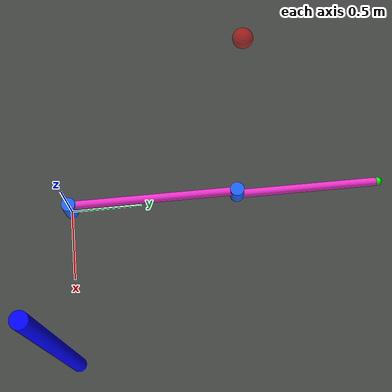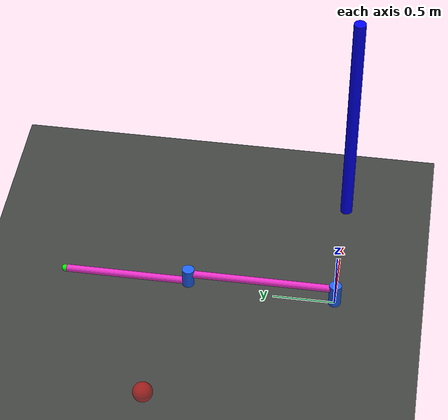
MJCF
<?xml version="1.0" encoding="utf-8"?>
<mujoco>
	<compiler angle="radian" coordinate="local" inertiafromgeom="true"></compiler>
	<option timestep="0.002">
		<flag warmstart="enable"></flag>
	</option>

	<default>
		<joint damping="3" stiffness="0" armature="0" user="0"/>
		<geom solref="0.008 1" solimp="0.95 0.95 0.01" margin="0.001" user="0"/>
	</default>

	<worldbody>
		<light directional="true" ambient="0.2 0.2 0.2" diffuse="0.8 0.8 0.8" specular="0.3 0.3 0.3" castshadow="false" pos="0 0 4" dir="0 0 -1" name="light0"></light>

		<geom name="ground" type="plane" pos="0 0 0" size="3 5 0.001" rgba=" .25 .26 .25 1"/>
		<body name="ground" pos="0 0 0">
			<site name="goal" type="sphere" size="0.08" pos="-1.223 1.36346 0.08" rgba="1 0 0 0.5"/>
		</body>

		<body name="obstacle">
			<geom type="cylinder" mass="10000" pos="1.1 0 1" size="0.05 1" rgba="0 0 1 1" />
		</body>

		<camera name="upper_camera" pos="0 0 6" />
		<body pos="0 0 0">
			<inertial diaginertia="0.3607 0.3607 0.3607" mass="3" pos="0 0 0"></inertial>
			<joint name="joint_1" type="hinge" axis="0 0 1" pos="0 0 0" limited="true" range="-5 5"/>
			<geom name="shoulder" type="capsule" size="0.03" fromto="0 0 0.16 0 1.2 0.16" rgba="0.91 0.18 0.78 1"/>
			<site name="connection_site_1" type="cylinder" size="0.05 0.1" pos="0 0 0.1" rgba="0.11 0.38 0.95 0.9"/>

			<body pos="0 0 0.08">
				<inertial diaginertia="0.2507 0.2507 0.2507" mass="3" pos="0 0 0"></inertial>
				<geom name="elbow" type="capsule" size="0.03" fromto="0 1.2 0 0 2.2 0" rgba="0.91 0.18 0.78 1"/>
				<site name="connection_site_2" type="cylinder" size="0.05 0.08" pos="0 1.2 0.05" rgba="0.11 0.38 0.95 0.9"/>
				<joint name="joint_2" type="hinge" axis="0 0 1" pos="0 1.2 0" limited="true" range="-5 5"/>
				<site name="end_site" type="sphere" size="0.03" pos="0 2.22 0" rgba="0 1 0 1"/>
			</body>
		</body>
	</worldbody>

	<actuator>
        <motor joint='joint_1' name='motor_1' ctrlrange="-5 5"/>
        <motor joint='joint_2' name='motor_2' ctrlrange="-5 5"/>
	</actuator>

</mujoco>
